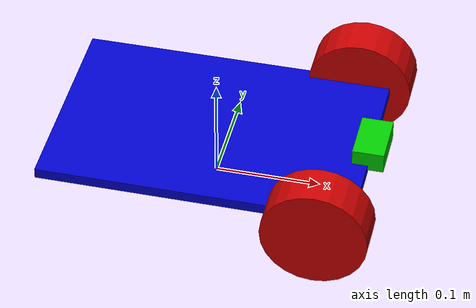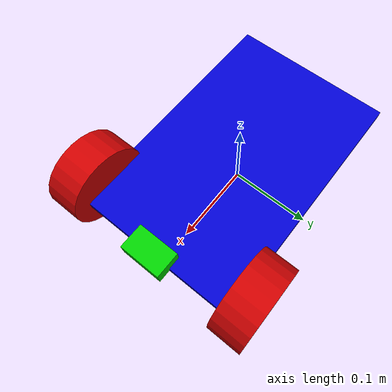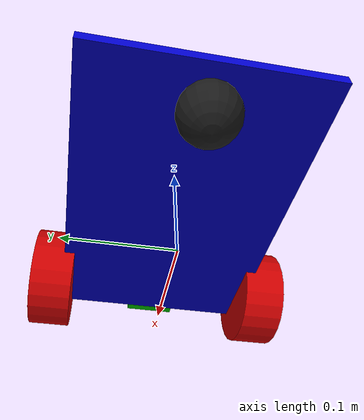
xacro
<?xml version="1.0"?>
<robot xmlns:xacro="http://ros.org/wiki/xacro" name="simple_robot_drive">

<!-- =============================== BASE PLATE LINK =============================== -->

<!-- This is the central, structural part of the robot. All other components are attached to it. -->

  <link name="base_link">
    <visual>
      <origin rpy="0 0 0" xyz="0 0 0.05"/>
      <geometry>
        <box size="0.3 0.2 0.01"/>
      </geometry>
      <material name="blue">
        <color rgba="0.0 0.0 0.8 1.0"/>
      </material>
    </visual>
    <collision>
      <origin rpy="0 0 0" xyz="0 0 0.05"/>
      <geometry>
        <box size="0.3 0.2 0.01"/>
      </geometry>
    </collision>
    <inertial>
      <origin rpy="0 0 0" xyz="0 0 0.05"/>
      <mass value="1.0"/>
      <inertia ixx="0.01" ixy="0.0" ixz="0.0" iyy="0.01" iyz="0.0" izz="0.01"/>
    </inertial>
  </link>

<!-- =============================== LEFT WHEEL LINK & JOINT =============================== -->

  <joint name="left_wheel_joint" type="continuous">
    <parent link="base_link"/>
    <child link="left_wheel_link"/>
    <origin xyz="0.12 -0.11 0.05" rpy="1.570796 0 0"/>
    <axis xyz="0 0 1"/>
  </joint>
  <link name="left_wheel_link">
    <visual>
      <origin rpy="0 0 0" xyz="0 0 0"/>
      <geometry>
        <cylinder radius="0.05" length="0.04"/>
      </geometry>
      <material name="red">
        <color rgba="0.8 0.0 0.0 1.0"/>
      </material>
    </visual>
    <collision>
      <origin rpy="0 0 0" xyz="0 0 0"/>
      <geometry>
        <cylinder radius="0.05" length="0.04"/>
      </geometry>
    </collision>
    <inertial>
      <origin rpy="0 0 0" xyz="0 0 0"/>
      <mass value="0.5"/>
      <inertia ixx="0.001" ixy="0.0" ixz="0.0" iyy="0.001" iyz="0.0" izz="0.001"/>
    </inertial>
  </link>

<!-- =============================== RIGHT WHEEL LINK & JOINT =============================== -->

  <joint name="right_wheel_joint" type="continuous">
    <parent link="base_link"/>
    <child link="right_wheel_link"/>
    <origin xyz="0.12 0.11 0.05" rpy="1.570796 0 0"/>
    <axis xyz="0 0 1"/>
  </joint>
  <link name="right_wheel_link">
    <visual>
      <origin rpy="0 0 0" xyz="0 0 0"/>
      <geometry>
        <cylinder radius="0.05" length="0.04"/>
      </geometry>
      <material name="red"/>
    </visual>
    <collision>
      <origin rpy="0 0 0" xyz="0 0 0"/>
      <geometry>
        <cylinder radius="0.05" length="0.04"/>
      </geometry>
    </collision>
    <inertial>
      <origin rpy="0 0 0" xyz="0 0 0"/>
      <mass value="0.5"/>
      <inertia ixx="0.001" ixy="0.0" ixz="0.0" iyy="0.001" iyz="0.0" izz="0.001"/>
    </inertial>
  </link>

<!-- =============================== CASTER WHEEL LINK & JOINT =============================== -->

    <joint name="caster_joint" type="fixed">
    <parent link="base_link"/>
    <child link="caster_link"/>
    <origin xyz="-0.12 0 0.025" rpy="0 0 0"/>
  </joint>
  <link name="caster_link">
    <visual>
      <origin rpy="0 0 0" xyz="0 0 0"/>
      <geometry>
        <sphere radius="0.025"/>
      </geometry>
      <material name="black">
        <color rgba="0.1 0.1 0.1 1.0"/>
      </material>
    </visual>
    <collision>
      <origin rpy="0 0 0" xyz="0 0 0"/>
      <geometry>
        <sphere radius="0.025"/>
      </geometry>
    </collision>
    <inertial>
      <origin rpy="0 0 0" xyz="0 0 0"/>
      <mass value="0.1"/>
      <inertia ixx="0.0001" ixy="0.0" ixz="0.0" iyy="0.0001" iyz="0.0" izz="0.0001"/>
    </inertial>
  </link>

<!-- =============================== SENSOR LINK & JOINT =============================== -->

  <joint name="sensor_joint" type="fixed">
    <parent link="base_link"/>
    <child link="sensor_link"/>
    <origin xyz="0.15 0 0.06" rpy="0 0 0"/>
  </joint>
  <link name="sensor_link">
    <visual>
      <origin rpy="0 0 0" xyz="0 0 0"/>
      <geometry>
        <box size="0.03 0.05 0.02"/>
      </geometry>
      <material name="green">
        <color rgba="0.0 0.8 0.0 1.0"/>
      </material>
    </visual>
    <collision>
      <origin rpy="0 0 0" xyz="0 0 0"/>
      <geometry>
        <box size="0.03 0.05 0.02"/>
      </geometry>
    </collision>
    <inertial>
      <origin rpy="0 0 0" xyz="0 0 0"/>
      <mass value="0.05"/>
      <inertia ixx="0.00001" ixy="0.0" ixz="0.0" iyy="0.00001" iyz="0.0" izz="0.00001"/>
    </inertial>
  </link>

<!-- ============================= TRANSMISSION TAGS ============================= -->

<!-- These link the joints to actuators in the control system. -->

<transmission name="left_wheel_trans">
  <type>transmission_interface/SimpleTransmission</type>
  <joint name="left_wheel_joint">
    <hardwareInterface>hardware_interface/Velocity</hardwareInterface>
  </joint>
  <actuator name="left_wheel_motor">
    <hardwareInterface>hardware_interface/Velocity</hardwareInterface>
    <mechanicalReduction>1</mechanicalReduction>
  </actuator>
</transmission>

<transmission name="right_wheel_trans">
  <type>transmission_interface/SimpleTransmission</type>
  <joint name="right_wheel_joint">
    <hardwareInterface>hardware_interface/Velocity</hardwareInterface>
  </joint>
  <actuator name="right_wheel_motor">
    <hardwareInterface>hardware_interface/Velocity</hardwareInterface>
    <mechanicalReduction>1</mechanicalReduction>
  </actuator>
</transmission>

<!-- ============================= GAZEBO TAGS ============================= -->

<!-- This is the single, combined Gazebo block required by the parser. -->

<gazebo>
  <plugin name="gazebo_ros2_control" filename="libgazebo_ros2_control.so">
    <robot_param>robot_description</robot_param>
    <robot_param_node>robot_state_publisher</robot_param_node>
    <parameters>$(find simple_robot_description)/config/controllers.yaml</parameters>
  </plugin>
</gazebo>

<gazebo reference="base_link">
  <material>Gazebo/Blue</material>
</gazebo>

<gazebo reference="left_wheel_link">
  <material>Gazebo/Red</material>
</gazebo>

<gazebo reference="right_wheel_link">
  <material>Gazebo/Red</material>
</gazebo>

<gazebo reference="caster_link">
  <material>Gazebo/Black</material>
  <mu1>0.0</mu1>
  <mu2>0.0</mu2>
  <kp>1000000.0</kp>
  <kd>10.0</kd>
</gazebo>

<gazebo reference="sensor_link">
  <material>Gazebo/Green</material>
</gazebo>

<!-- ============================= ROS2 CONTROL BLOCK ============================= -->

<!-- This defines which joints are controlled by ros2_control and their interfaces. -->

<ros2_control name="simple_robot_system" type="system">
  <hardware>
    <plugin>gazebo_ros2_control/GazeboSystem</plugin>
  </hardware>

  <joint name="left_wheel_joint">
    <command_interface name="velocity"/>
    <state_interface name="position"/>
    <state_interface name="velocity"/>
  </joint>

  <joint name="right_wheel_joint">
    <command_interface name="velocity"/>
    <state_interface name="position"/>
    <state_interface name="velocity"/>
  </joint>
</ros2_control>

</robot>
